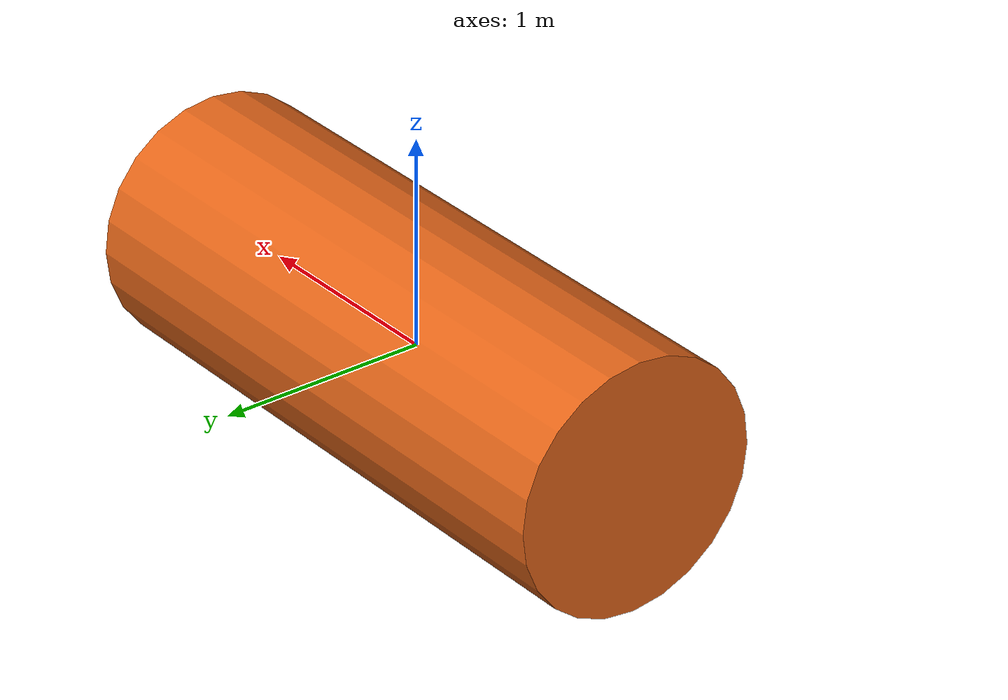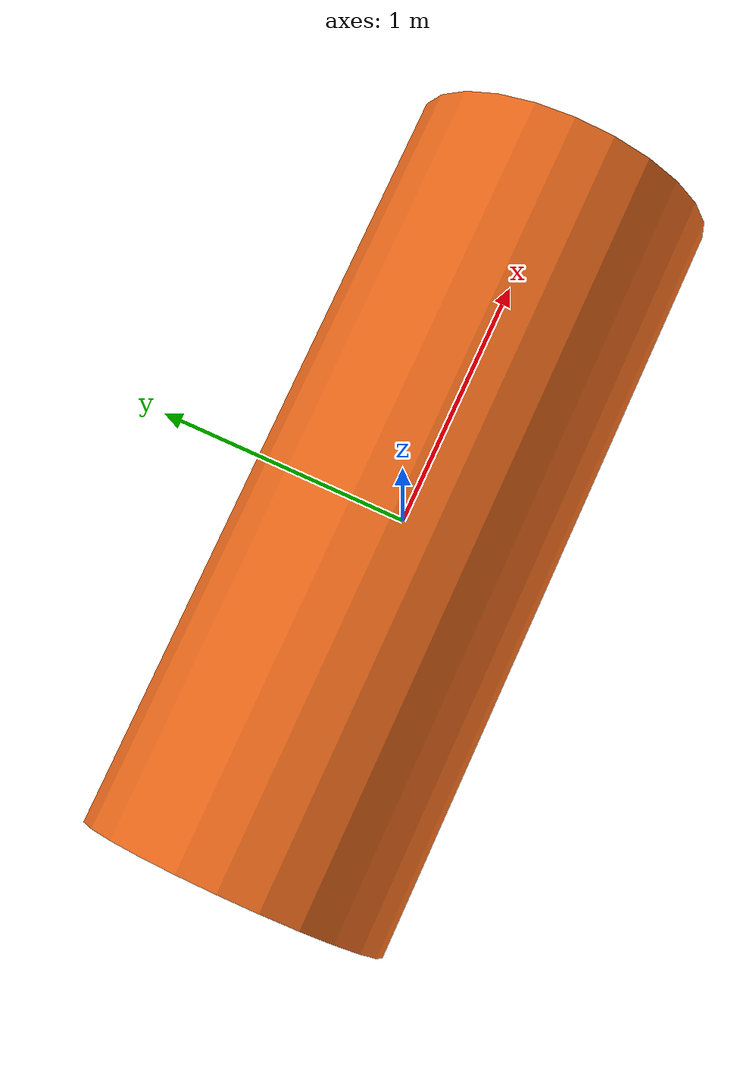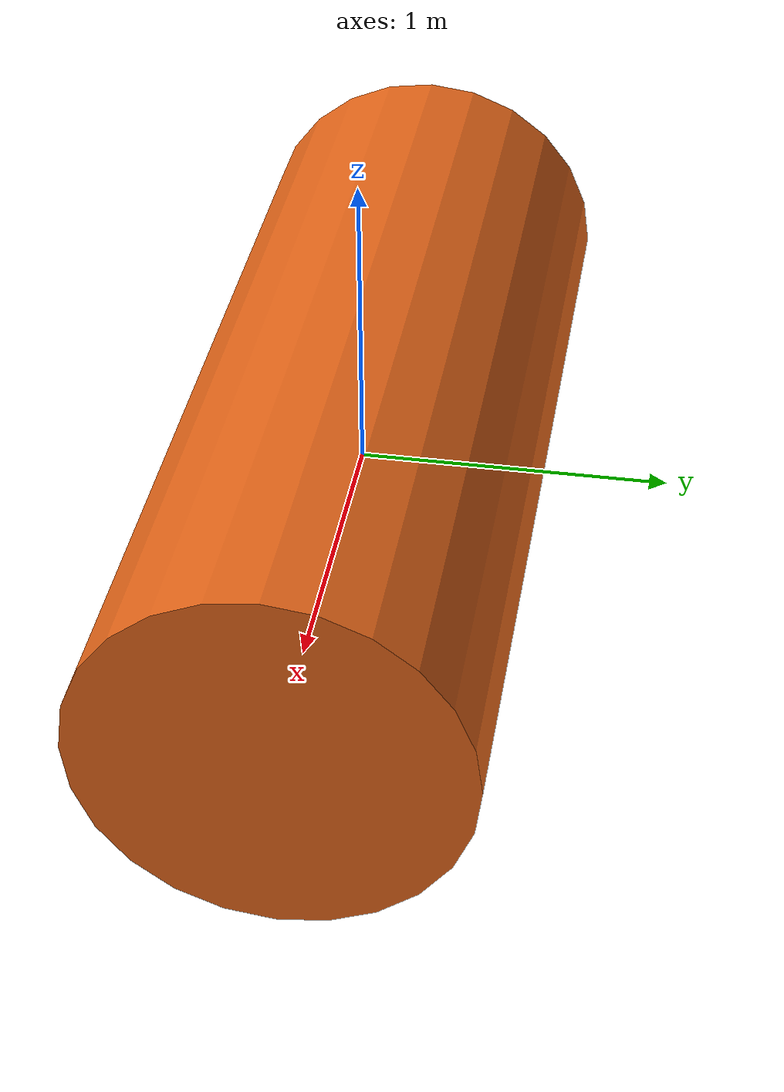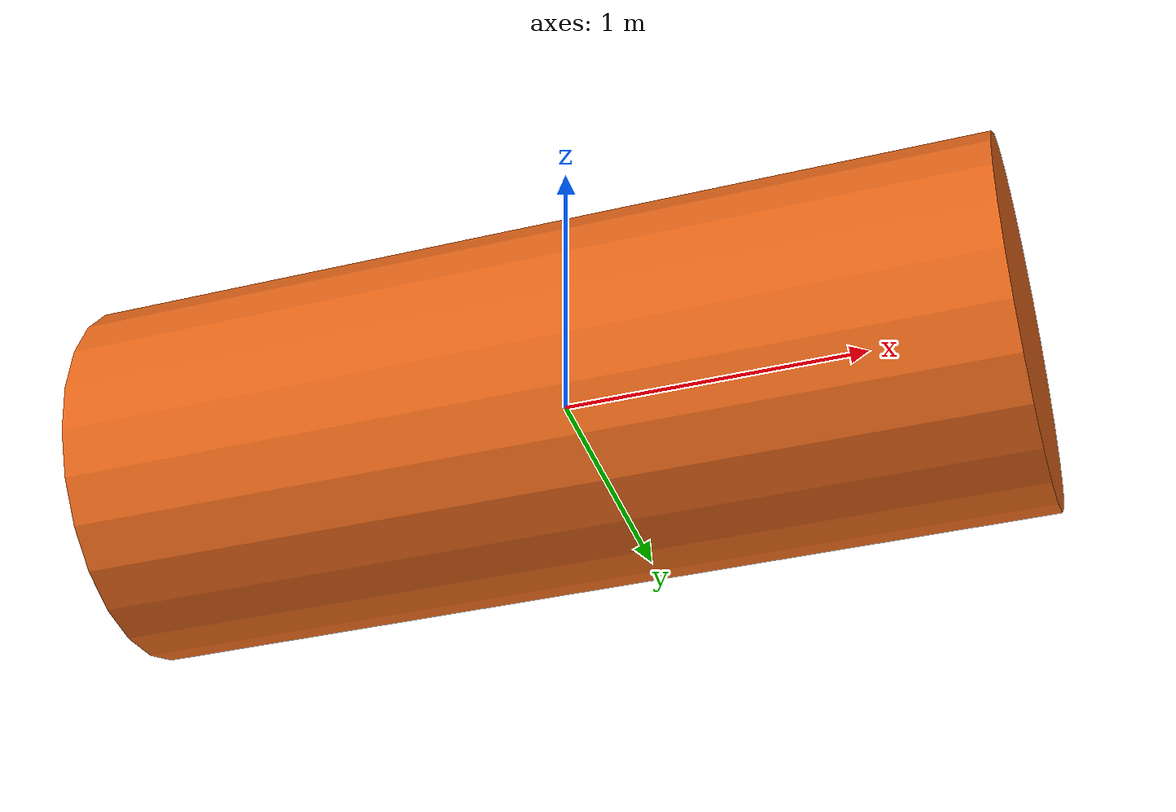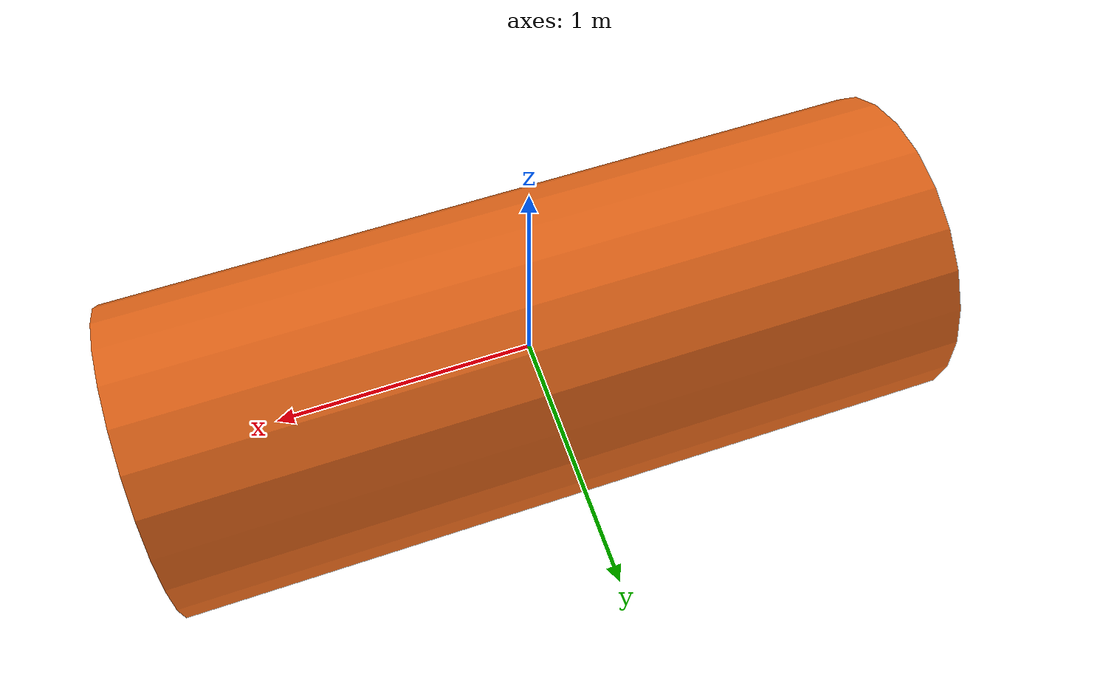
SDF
<?xml version="1.0" ?>
<sdf version="1.7">
  <model name="floating_box">
    <static>false</static>

    <link name="base_link">
      <pose>0 0 0 0 1.57079632679 0</pose>

      <inertial>
        <!-- Light enough to float strongly -->
        <mass>600.0</mass>
        <inertia>
          <!-- Approximate inertia for a solid cylinder:
               length = 1.0 m, radius = 0.35 m, mass = 120 kg -->
          <ixx>540.0</ixx>
          <iyy>4860.0</iyy>
          <izz>4860.0</izz>
          <ixy>0</ixy>
          <ixz>0</ixz>
          <iyz>0</iyz>
        </inertia>
      </inertial>

      <collision name="collision">
        <geometry>
          <cylinder>
            <radius>0.6</radius>
            <length>3.0</length>
          </cylinder>
        </geometry>
      </collision>

      <visual name="visual">
        <geometry>
          <cylinder>
            <radius>0.6</radius>
            <length>3.0</length>
          </cylinder>
        </geometry>
        <material>
          <ambient>0.9 0.4 0.1 1</ambient>
          <diffuse>0.9 0.4 0.1 1</diffuse>
        </material>
      </visual>

      <velocity_decay>
        <linear>0.5</linear>
        <angular>0.5</angular>
      </velocity_decay>
    </link>

    <plugin
        filename="libSurface.so"
        name="maritime::Surface">
        <link_name>base_link</link_name>
        <hull_length>3.0</hull_length>
        <hull_radius>0.6</hull_radius>
        <fluid_level>0</fluid_level>
        <points>
            <point>-1.2 0 0</point>
            <point> 0.0 0 0</point>
            <point> 1.2 0 0</point>
        </points>
        <wavefield>
        <topic>/gazebo/wavefield/parameters</topic>
        </wavefield>
    </plugin>

    <plugin
      filename="gz-sim-hydrodynamics-system"
      name="gz::sim::systems::Hydrodynamics">
      <link_name>base_link</link_name>

      <!-- linear drag -->
      <xU>-5.0</xU>
      <yV>-5.0</yV>
      <zW>-20.0</zW>
      <kP>-0.5</kP>
      <mQ>-0.5</mQ>
      <nR>-0.5</nR>

      <!-- quadratic drag -->
      <xUabsU>-2.0</xUabsU>
      <yVabsV>-2.0</yVabsV>
      <zWabsW>-10.0</zWabsW>
      <kPabsP>-0.1</kPabsP>
      <mQabsQ>-0.1</mQabsQ>
      <nRabsR>-0.1</nRabsR>
    </plugin>
  </model>
</sdf>
